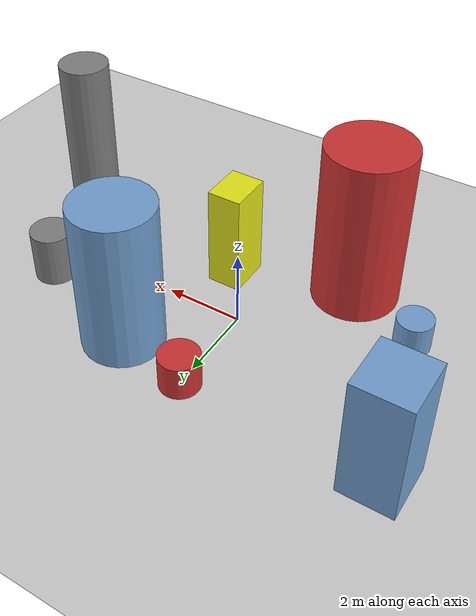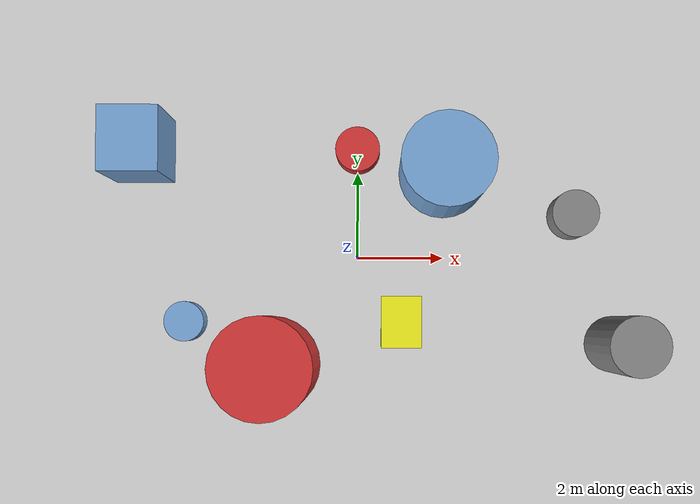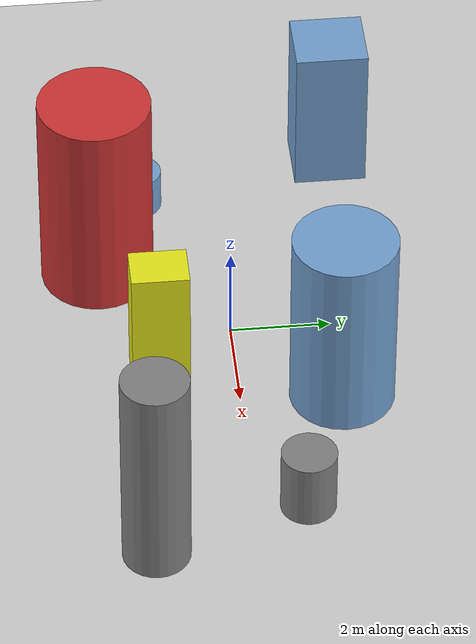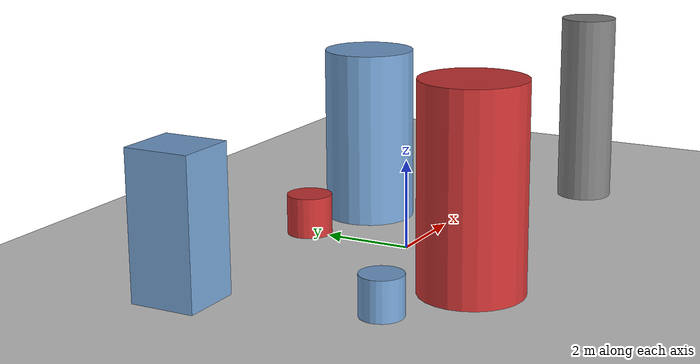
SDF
<?xml version='1.0'?>
<sdf version='1.6'>
  <world name='routeA_rl_v1__support_expansion__rl_train__mixed_3d_low_density_route__000138'>
    <!-- Sun light -->
    <light name='sun' type='directional'>
      <cast_shadows>1</cast_shadows>
      <pose>0 0 10 0 0 0</pose>
      <diffuse>0.8 0.8 0.8 1</diffuse>
      <specular>0.2 0.2 0.2 1</specular>
      <attenuation>
        <range>1000</range>
        <constant>0.9</constant>
        <linear>0.01</linear>
        <quadratic>0.001</quadratic>
      </attenuation>
      <direction>-0.5 0.1 -0.9</direction>
    </light>

    <!-- Ground plane -->
    <model name='ground_plane'>
      <static>1</static>
      <link name='link'>
        <collision name='collision'>
          <geometry>
            <plane>
              <normal>0 0 1</normal>
              <size>100 100</size>
            </plane>
          </geometry>
          <surface>
            <contact>
              <collide_bitmask>65535</collide_bitmask>
              <ode/>
            </contact>
            <friction>
              <ode>
                <mu>100</mu>
                <mu2>50</mu2>
              </ode>
              <torsional><ode/></torsional>
            </friction>
            <bounce/>
          </surface>
          <max_contacts>10</max_contacts>
        </collision>
        <visual name='visual'>
          <cast_shadows>0</cast_shadows>
          <geometry>
            <plane>
              <normal>0 0 1</normal>
              <size>100 100</size>
            </plane>
          </geometry>
          <material>
            <script>
              <uri>file://media/materials/scripts/gazebo.material</uri>
              <n>Gazebo/Grey</n>
            </script>
          </material>
        </visual>
      </link>
    </model>

    <!-- Environment -->
    <magnetic_field>6e-06 2.3e-05 -4.2e-05</magnetic_field>
    <atmosphere type='adiabatic'/>
    <physics name='default_physics' default='0' type='ode'>
      <gravity>0 0 -9.8</gravity>
      <max_step_size>0.004</max_step_size>
      <real_time_factor>1</real_time_factor>
      <real_time_update_rate>250</real_time_update_rate>
    </physics>
    <scene>
      <ambient>0.4 0.4 0.4 1</ambient>
      <background>0.7 0.7 0.7 1</background>
      <shadows>1</shadows>
    </scene>
    <wind/>
    <spherical_coordinates>
      <surface_model>EARTH_WGS84</surface_model>
      <latitude_deg>0</latitude_deg>
      <longitude_deg>0</longitude_deg>
      <elevation>0</elevation>
      <heading_deg>0</heading_deg>
    </spherical_coordinates>

    <!-- ============ OBSTACLES (8) ============ -->
    <model name='low_obs_0'>
      <static>1</static>
      <link name='link'>
        <visual name='visual'>
          <geometry>
            <cylinder>
              <radius>0.4634</radius>
              <length>0.8704</length>
            </cylinder>
          </geometry>
          <material>
            <script>
              <n>Gazebo/Blue</n>
              <uri>file://media/materials/scripts/gazebo.material</uri>
            </script>
            <ambient>0.447 0.624 0.812 1</ambient>
          </material>
        </visual>
        <collision name='collision'>
          <geometry>
            <cylinder>
              <radius>0.4634</radius>
              <length>0.8704</length>
            </cylinder>
          </geometry>
          <max_contacts>10</max_contacts>
          <surface>
            <contact><ode/></contact>
            <bounce/>
            <friction>
              <ode><mu>1</mu><mu2>1</mu2></ode>
              <torsional><ode/></torsional>
            </friction>
          </surface>
        </collision>
      </link>
      <pose>-4.0000 -1.5000 0.4352 0 0 0.0000</pose>
    </model>

    <model name='low_obs_1'>
      <static>1</static>
      <link name='link'>
        <visual name='visual'>
          <geometry>
            <cylinder>
              <radius>0.5157</radius>
              <length>0.9254</length>
            </cylinder>
          </geometry>
          <material>
            <script>
              <n>Gazebo/Red</n>
              <uri>file://media/materials/scripts/gazebo.material</uri>
            </script>
            <ambient>0.8 0.2 0.2 1</ambient>
          </material>
        </visual>
        <collision name='collision'>
          <geometry>
            <cylinder>
              <radius>0.5157</radius>
              <length>0.9254</length>
            </cylinder>
          </geometry>
          <max_contacts>10</max_contacts>
          <surface>
            <contact><ode/></contact>
            <bounce/>
            <friction>
              <ode><mu>1</mu><mu2>1</mu2></ode>
              <torsional><ode/></torsional>
            </friction>
          </surface>
        </collision>
      </link>
      <pose>0.0000 2.5000 0.4627 0 0 0.0000</pose>
    </model>

    <model name='low_obs_2'>
      <static>1</static>
      <link name='link'>
        <visual name='visual'>
          <geometry>
            <cylinder>
              <radius>0.5432</radius>
              <length>1.3850</length>
            </cylinder>
          </geometry>
          <material>
            <script>
              <n>Gazebo/Grey</n>
              <uri>file://media/materials/scripts/gazebo.material</uri>
            </script>
            <ambient>0.5 0.5 0.5 1</ambient>
          </material>
        </visual>
        <collision name='collision'>
          <geometry>
            <cylinder>
              <radius>0.5432</radius>
              <length>1.3850</length>
            </cylinder>
          </geometry>
          <max_contacts>10</max_contacts>
          <surface>
            <contact><ode/></contact>
            <bounce/>
            <friction>
              <ode><mu>1</mu><mu2>1</mu2></ode>
              <torsional><ode/></torsional>
            </friction>
          </surface>
        </collision>
      </link>
      <pose>5.0000 1.0000 0.6925 0 0 0.0000</pose>
    </model>

    <model name='tall_obs_0'>
      <static>1</static>
      <link name='link'>
        <visual name='visual'>
          <geometry>
            <cylinder>
              <radius>1.1322</radius>
              <length>4.4260</length>
            </cylinder>
          </geometry>
          <material>
            <script>
              <n>Gazebo/Red</n>
              <uri>file://media/materials/scripts/gazebo.material</uri>
            </script>
            <ambient>0.8 0.2 0.2 1</ambient>
          </material>
        </visual>
        <collision name='collision'>
          <geometry>
            <cylinder>
              <radius>1.1322</radius>
              <length>4.4260</length>
            </cylinder>
          </geometry>
          <max_contacts>10</max_contacts>
          <surface>
            <contact><ode/></contact>
            <bounce/>
            <friction>
              <ode><mu>1</mu><mu2>1</mu2></ode>
              <torsional><ode/></torsional>
            </friction>
          </surface>
        </collision>
      </link>
      <pose>-2.0000 -2.5000 2.2130 0 0 0.0000</pose>
    </model>

    <model name='tall_obs_1'>
      <static>1</static>
      <link name='link'>
        <visual name='visual'>
          <geometry>
            <cylinder>
              <radius>1.0397</radius>
              <length>4.0156</length>
            </cylinder>
          </geometry>
          <material>
            <script>
              <n>Gazebo/Blue</n>
              <uri>file://media/materials/scripts/gazebo.material</uri>
            </script>
            <ambient>0.447 0.624 0.812 1</ambient>
          </material>
        </visual>
        <collision name='collision'>
          <geometry>
            <cylinder>
              <radius>1.0397</radius>
              <length>4.0156</length>
            </cylinder>
          </geometry>
          <max_contacts>10</max_contacts>
          <surface>
            <contact><ode/></contact>
            <bounce/>
            <friction>
              <ode><mu>1</mu><mu2>1</mu2></ode>
              <torsional><ode/></torsional>
            </friction>
          </surface>
        </collision>
      </link>
      <pose>2.0000 2.0000 2.0078 0 0 0.0000</pose>
    </model>

    <model name='tall_obs_2'>
      <static>1</static>
      <link name='link'>
        <visual name='visual'>
          <geometry>
            <cylinder>
              <radius>0.6582</radius>
              <length>4.4907</length>
            </cylinder>
          </geometry>
          <material>
            <script>
              <n>Gazebo/Grey</n>
              <uri>file://media/materials/scripts/gazebo.material</uri>
            </script>
            <ambient>0.5 0.5 0.5 1</ambient>
          </material>
        </visual>
        <collision name='collision'>
          <geometry>
            <cylinder>
              <radius>0.6582</radius>
              <length>4.4907</length>
            </cylinder>
          </geometry>
          <max_contacts>10</max_contacts>
          <surface>
            <contact><ode/></contact>
            <bounce/>
            <friction>
              <ode><mu>1</mu><mu2>1</mu2></ode>
              <torsional><ode/></torsional>
            </friction>
          </surface>
        </collision>
      </link>
      <pose>6.0000 -2.0000 2.2454 0 0 0.0000</pose>
    </model>

    <model name='med_obs_0'>
      <static>1</static>
      <link name='link'>
        <visual name='visual'>
          <geometry>
            <box>
              <size>1.3543 1.4592 3.2032</size>
            </box>
          </geometry>
          <material>
            <script>
              <n>Gazebo/Blue</n>
              <uri>file://media/materials/scripts/gazebo.material</uri>
            </script>
            <ambient>0.447 0.624 0.812 1</ambient>
          </material>
        </visual>
        <collision name='collision'>
          <geometry>
            <box>
              <size>1.3543 1.4592 3.2032</size>
            </box>
          </geometry>
          <max_contacts>10</max_contacts>
          <surface>
            <contact><ode/></contact>
            <bounce/>
            <friction>
              <ode><mu>1</mu><mu2>1</mu2></ode>
              <torsional><ode/></torsional>
            </friction>
          </surface>
        </collision>
      </link>
      <pose>-5.0000 2.5000 1.6016 0 0 0.0000</pose>
    </model>

    <model name='med_obs_1'>
      <static>1</static>
      <link name='link'>
        <visual name='visual'>
          <geometry>
            <box>
              <size>0.8874 1.1404 2.7529</size>
            </box>
          </geometry>
          <material>
            <script>
              <n>Gazebo/Yellow</n>
              <uri>file://media/materials/scripts/gazebo.material</uri>
            </script>
            <ambient>0.9 0.9 0.1 1</ambient>
          </material>
        </visual>
        <collision name='collision'>
          <geometry>
            <box>
              <size>0.8874 1.1404 2.7529</size>
            </box>
          </geometry>
          <max_contacts>10</max_contacts>
          <surface>
            <contact><ode/></contact>
            <bounce/>
            <friction>
              <ode><mu>1</mu><mu2>1</mu2></ode>
              <torsional><ode/></torsional>
            </friction>
          </surface>
        </collision>
      </link>
      <pose>1.0000 -1.5000 1.3764 0 0 0.0000</pose>
    </model>

    <!-- GUI camera -->
    <gui fullscreen='0'>
      <camera name='user_camera'>
        <pose>-15 0 18 0 0.85 0.15</pose>
        <view_controller>orbit</view_controller>
        <projection_type>perspective</projection_type>
      </camera>
    </gui>
  </world>
</sdf>
